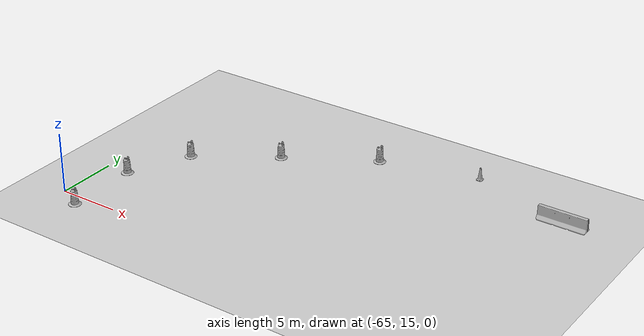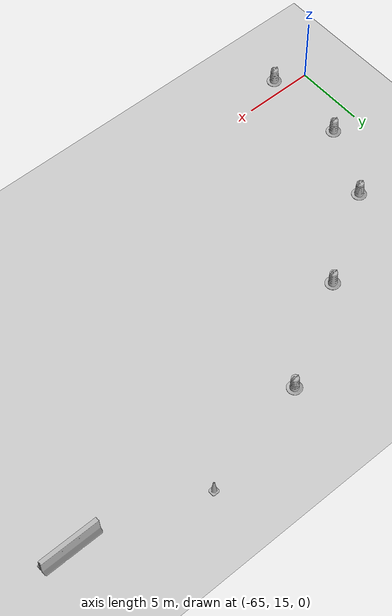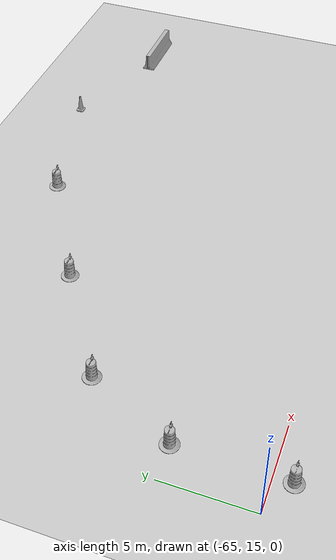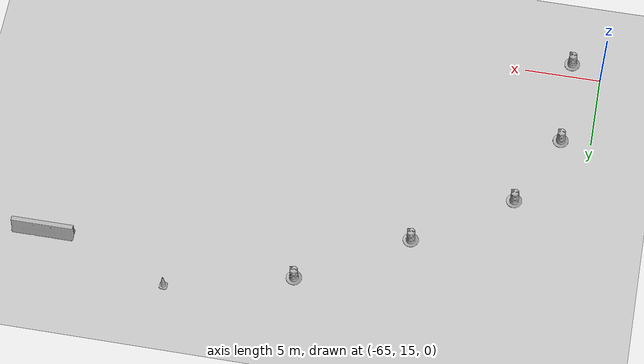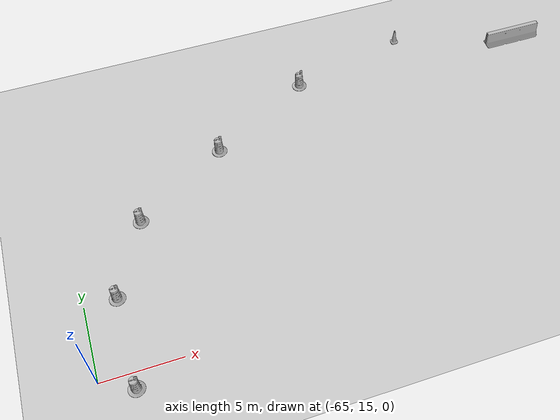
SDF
<sdf version="1.4">
 <world name="default">
  <model name="ground_plane">
   <static>1</static>
   <link name="link">
    <collision name="collision">
     <geometry><plane><normal>0 0 1</normal><size>100 100</size></plane></geometry>
     <surface><friction><ode><mu>100</mu><mu2>50</mu2></ode></friction></surface>
    </collision>
    <visual name="visual">
     <cast_shadows>0</cast_shadows>
     <geometry><plane><normal>0 0 1</normal><size>100 100</size></plane></geometry>
     <material>
      <script><uri>file://media/materials/scripts/gazebo.material</uri><name>Gazebo/Grey</name></script>
     </material>
    </visual>
    <velocity_decay><linear>0</linear><angular>0</angular></velocity_decay>
   </link>
  </model>
  <light name="sun" type="directional">
   <pose>0 0 10 0 -0 0</pose>
   <diffuse>0.8 0.8 0.8 1</diffuse>
   <specular>0.2 0.2 0.2 1</specular>
   <attenuation>
    <range>1000</range>
    <constant>0.9</constant>
    <linear>0.01</linear>
    <quadratic>0.001</quadratic>
   </attenuation>
   <direction>-0.5 0.1 -0.9</direction>
  </light>
  <physics type="ode">
   <max_step_size>0.001</max_step_size>
   <real_time_factor>1</real_time_factor>
   <real_time_update_rate>1000</real_time_update_rate>
   <gravity>0 0 -9.8</gravity>
  </physics>
  <scene><ambient>0.4 0.4 0.4 1</ambient><background>0.7 0.7 0.7 1</background><shadows>1</shadows></scene>
  <spherical_coordinates>
   <surface_model>EARTH_WGS84</surface_model>
   <latitude_deg>0</latitude_deg>
   <longitude_deg>0</longitude_deg>
   <elevation>0</elevation>
   <heading_deg>0</heading_deg>
  </spherical_coordinates>
  <model name="Construction Cone">
   <link name="link">
    <collision name="collision">
     <geometry>
      <mesh><scale>10 10 10</scale><uri>model://construction_cone/meshes/construction_cone.dae</uri></mesh>
     </geometry>
    </collision>
    <visual name="visual">
     <geometry>
      <mesh><scale>10 10 10</scale><uri>model://construction_cone/meshes/construction_cone.dae</uri></mesh>
     </geometry>
    </visual>
    <velocity_decay><linear>0</linear><angular>0</angular></velocity_decay>
    <inertial>
     <inertia><ixx>1</ixx><ixy>0</ixy><ixz>0</ixz><iyy>1</iyy><iyz>0</iyz><izz>1</izz></inertia>
     <mass>1</mass>
    </inertial>
   </link>
   <pose>-39.4073 35 -7e-06 -1e-06 -1e-06 0</pose>
   <static>0</static>
  </model>
  <model name="Construction Barrel">
   <link name="link">
    <inertial>
     <pose>0 0 0.4 0 -0 0</pose>
     <mass>500</mass>
     <inertia><ixx>51.2096</ixx><iyy>51.2096</iyy><izz>25</izz><ixy>0</ixy><ixz>0</ixz><iyz>0</iyz></inertia>
    </inertial>
    <collision name="collision">
     <geometry><mesh><uri>model://construction_barrel/meshes/construction_barrel.dae</uri></mesh></geometry>
    </collision>
    <visual name="visual">
     <geometry><mesh><uri>model://construction_barrel/meshes/construction_barrel.dae</uri></mesh></geometry>
    </visual>
    <velocity_decay><linear>0</linear><angular>0</angular></velocity_decay>
   </link>
   <pose>-63 14.0006 -2e-06 -4e-06 7e-06 -0.001042</pose>
   <static>0</static>
  </model>
  <model name="Construction Barrel_0">
   <link name="link">
    <inertial>
     <pose>0 0 0.4 0 -0 0</pose>
     <mass>500</mass>
     <inertia><ixx>51.2096</ixx><iyy>51.2096</iyy><izz>25</izz><ixy>0</ixy><ixz>0</ixz><iyz>0</iyz></inertia>
    </inertial>
    <collision name="collision">
     <geometry><mesh><uri>model://construction_barrel/meshes/construction_barrel.dae</uri></mesh></geometry>
    </collision>
    <visual name="visual">
     <geometry><mesh><uri>model://construction_barrel/meshes/construction_barrel.dae</uri></mesh></geometry>
    </visual>
    <velocity_decay><linear>0</linear><angular>0</angular></velocity_decay>
   </link>
   <pose>-63 20.0006 2e-06 -3e-06 -3e-06 -0.000965</pose>
   <static>0</static>
  </model>
  <model name="Construction Barrel_1">
   <link name="link">
    <inertial>
     <pose>0 0 0.4 0 -0 0</pose>
     <mass>500</mass>
     <inertia><ixx>51.2096</ixx><iyy>51.2096</iyy><izz>25</izz><ixy>0</ixy><ixz>0</ixz><iyz>0</iyz></inertia>
    </inertial>
    <collision name="collision">
     <geometry><mesh><uri>model://construction_barrel/meshes/construction_barrel.dae</uri></mesh></geometry>
    </collision>
    <visual name="visual">
     <geometry><mesh><uri>model://construction_barrel/meshes/construction_barrel.dae</uri></mesh></geometry>
    </visual>
    <velocity_decay><linear>0</linear><angular>0</angular></velocity_decay>
   </link>
   <pose>-60.5994 25.0005 -0 -0 -0 -0.000918</pose>
   <static>0</static>
  </model>
  <model name="Construction Barrel_2">
   <link name="link">
    <inertial>
     <pose>0 0 0.4 0 -0 0</pose>
     <mass>500</mass>
     <inertia><ixx>51.2096</ixx><iyy>51.2096</iyy><izz>25</izz><ixy>0</ixy><ixz>0</ixz><iyz>0</iyz></inertia>
    </inertial>
    <collision name="collision">
     <geometry><mesh><uri>model://construction_barrel/meshes/construction_barrel.dae</uri></mesh></geometry>
    </collision>
    <visual name="visual">
     <geometry><mesh><uri>model://construction_barrel/meshes/construction_barrel.dae</uri></mesh></geometry>
    </visual>
    <velocity_decay><linear>0</linear><angular>0</angular></velocity_decay>
   </link>
   <pose>-54.4355 29.0005 -0 -0 -0 -0.000845</pose>
   <static>0</static>
  </model>
  <model name="Construction Barrel_3">
   <link name="link">
    <inertial>
     <pose>0 0 0.4 0 -0 0</pose>
     <mass>500</mass>
     <inertia><ixx>51.2096</ixx><iyy>51.2096</iyy><izz>25</izz><ixy>0</ixy><ixz>0</ixz><iyz>0</iyz></inertia>
    </inertial>
    <collision name="collision">
     <geometry><mesh><uri>model://construction_barrel/meshes/construction_barrel.dae</uri></mesh></geometry>
    </collision>
    <visual name="visual">
     <geometry><mesh><uri>model://construction_barrel/meshes/construction_barrel.dae</uri></mesh></geometry>
    </visual>
    <velocity_decay><linear>0</linear><angular>0</angular></velocity_decay>
   </link>
   <pose>-47.5074 33.0005 1e-06 -1e-06 -2e-06 -0.000795</pose>
   <static>0</static>
  </model>
  <model name="jersey_barrier_2">
   <static>1</static>
   <link name="link">
    <visual name="visual">
     <geometry><mesh><uri>model://jersey_barrier/meshes/jersey_barrier.dae</uri></mesh></geometry>
    </visual>
    <collision name="upright">
     <pose>0 0 0.5715 0 -0 0</pose>
     <geometry><box><size>4.06542 0.3063 1.143</size></box></geometry>
    </collision>
    <collision name="base">
     <pose>0 0 0.032258 0 -0 0</pose>
     <geometry><box><size>4.06542 0.8107 0.064516</size></box></geometry>
    </collision>
    <collision name="base2">
     <pose>0 0 0.1 0 -0 0</pose>
     <geometry><box><size>4.06542 0.65 0.1</size></box></geometry>
    </collision>
    <collision name="base3">
     <pose>0 0 0.2 0 -0 0</pose>
     <geometry><box><size>4.06542 0.5 0.1</size></box></geometry>
    </collision>
    <collision name="left-angle">
     <pose>0 -0.224 0.2401 0.9 -0 0</pose>
     <geometry><box><size>4.06542 0.5 0.064516</size></box></geometry>
    </collision>
    <collision name="right-angle">
     <pose>0 0.224 0.2401 -0.9 0 0</pose>
     <geometry><box><size>4.06542 0.5 0.064516</size></box></geometry>
    </collision>
    <velocity_decay><linear>0</linear><angular>0</angular></velocity_decay>
   </link>
   <pose>-31 32.4465 0 0 -0 0</pose>
  </model>
 </world>
</sdf>
